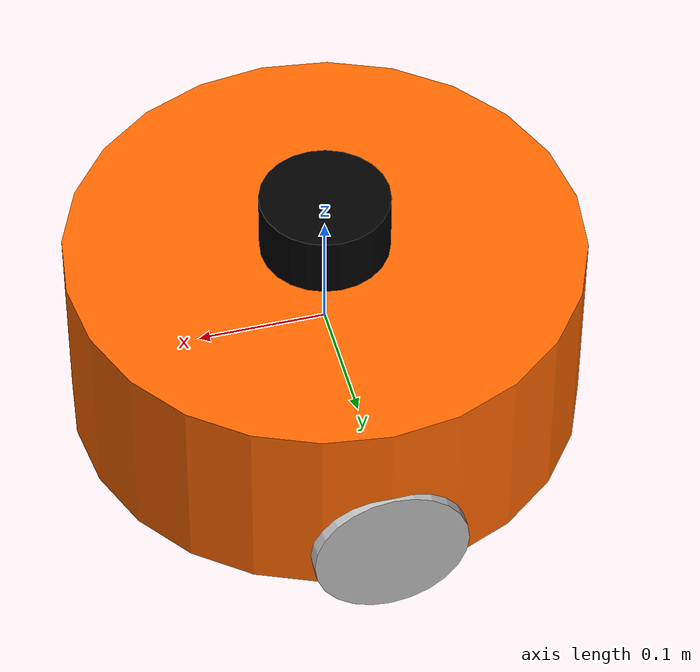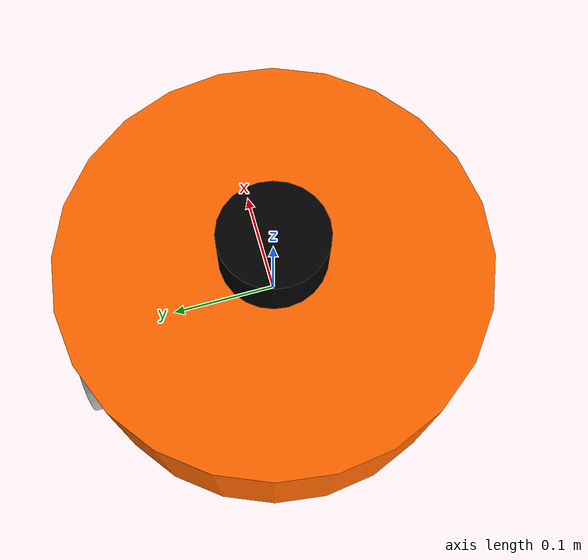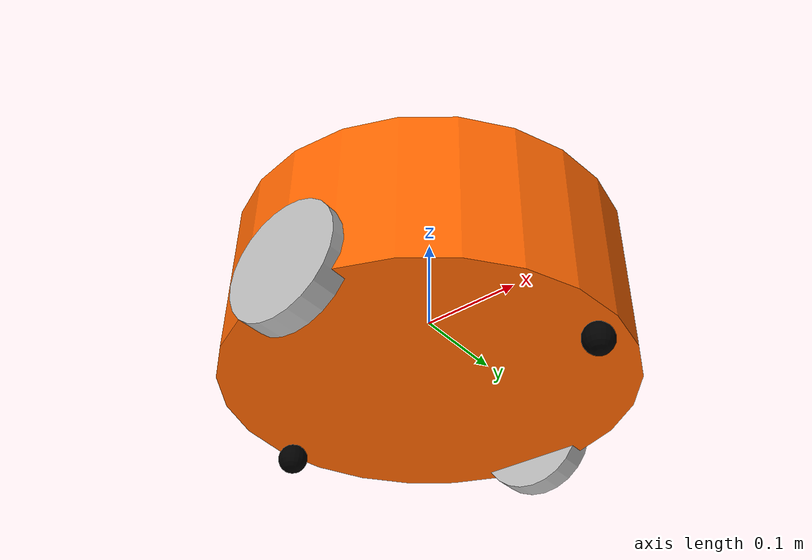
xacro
<?xml version="1.0"?>
<robot name="mbot" xmlns:xacro="http://www.ros.org/wiki/xacro">

    <xacro:include filename="$(find learning_gazebo_harmonic)/urdf/mbot_base_gazebo_harmonic.xacro" />
    <xacro:include filename="$(find learning_gazebo_harmonic)/urdf/sensors/lidar_gazebo_harmonic.xacro" />

    <xacro:property name="lidar_offset_x" value="0" />
    <xacro:property name="lidar_offset_y" value="0" />
    <xacro:property name="lidar_offset_z" value="0.105" />

    <!-- lidar -->
    <joint name="lidar_joint" type="fixed">
        <origin xyz="${lidar_offset_x} ${lidar_offset_y} ${lidar_offset_z}" rpy="0 0 0" />
        <parent link="base_link"/>
        <child link="laser_link"/>
    </joint>

    <xacro:laser_lidar prefix="laser"/>

    <xacro:mbot_base_gazebo/>

</robot>

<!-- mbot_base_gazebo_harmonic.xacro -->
<robot name="mbot" xmlns:xacro="http://www.ros.org/wiki/xacro">
    <!-- PROPERTY LIST -->
    <xacro:property name="M_PI" value="3.1415926"/>
    <xacro:property name="base_mass"   value="1" />
    <xacro:property name="base_radius" value="0.20"/>
    <xacro:property name="base_length" value="0.16"/>

    <xacro:property name="wheel_mass"   value="0.2" />
    <xacro:property name="wheel_radius" value="0.06"/>
    <xacro:property name="wheel_length" value="0.025"/>
    <xacro:property name="wheel_joint_y" value="0.19"/>
    <xacro:property name="wheel_joint_z" value="0.05"/>

    <xacro:property name="caster_mass"    value="0.2" />
    <xacro:property name="caster_radius"  value="0.015"/> <!-- wheel_radius - ( base_length/2 - wheel_joint_z) -->
    <xacro:property name="caster_joint_x" value="0.18"/>

    <!-- Defining the colors used in this robot -->
    <material name="yellow">
        <color rgba="1 0.4 0 1"/>
    </material>
    <material name="black">
        <color rgba="0 0 0 0.95"/>
    </material>
    <material name="gray">
        <color rgba="0.75 0.75 0.75 1"/>
    </material>

    <!-- Macro for inertia matrix -->
    <xacro:macro name="sphere_inertial_matrix" params="m r">
        <inertial>
            <origin xyz="0 0 0" rpy="0 0 0"/>
            <mass value="${m}" />
            <inertia ixx="${2*m*r*r/5}" ixy="0" ixz="0"
                iyy="${2*m*r*r/5}" iyz="0"
                izz="${2*m*r*r/5}" />
        </inertial>
    </xacro:macro>

    <xacro:macro name="cylinder_inertial_matrix" params="m r h">
        <inertial>
            <origin xyz="0 0 0" rpy="0 0 0"/>
            <mass value="${m}" />
            <inertia ixx="${m*(3*r*r+h*h)/12}" ixy = "0" ixz = "0"
                iyy="${m*(3*r*r+h*h)/12}" iyz = "0"
                izz="${m*r*r/2}" />
        </inertial>
    </xacro:macro>

    <!-- Macro for robot wheel -->
    <xacro:macro name="wheel" params="prefix reflect">
        <joint name="${prefix}_wheel_joint" type="continuous">
            <origin xyz="0 ${reflect*wheel_joint_y} ${-wheel_joint_z}" rpy="0 0 0"/>
            <parent link="base_link"/>
            <child link="${prefix}_wheel_link"/>
            <axis xyz="0 1 0"/>
        </joint>

        <link name="${prefix}_wheel_link">
            <collision>
                <origin xyz="0 0 0" rpy="${M_PI/2} 0 0" />
                <geometry>
                    <cylinder radius="${wheel_radius}" length = "${wheel_length}"/>
                </geometry>
            </collision>

            <visual>
                <origin xyz="0 0 0" rpy="${M_PI/2} 0 0" />
                <geometry>
                    <cylinder radius="${wheel_radius}" length = "${wheel_length}"/>
                </geometry>
                <material name="gray" />
            </visual>

            <xacro:cylinder_inertial_matrix  m="${wheel_mass}" r="${wheel_radius}" h="${wheel_length}" />
        </link>

        <gazebo reference="${prefix}_wheel_link">
            <mu1>100000.0</mu1>
            <mu2>100000.0</mu2>
        </gazebo>
    </xacro:macro>

    <!-- Macro for robot caster -->
    <xacro:macro name="caster" params="prefix reflect">
        <joint name="${prefix}_caster_joint" type="fixed">
            <origin xyz="${reflect*caster_joint_x} 0 ${-(base_length/2 + caster_radius)}" rpy="0 0 0"/>
            <parent link="base_link"/>
            <child link="${prefix}_caster_link"/>
        </joint>

        <link name="${prefix}_caster_link">
            <collision>
                <origin xyz="0 0 0" rpy="0 0 0"/>
                <geometry>
                    <sphere radius="${caster_radius}" />
                </geometry>
            </collision>

            <visual>
                <origin xyz="0 0 0" rpy="0 0 0"/>
                <geometry>
                    <sphere radius="${caster_radius}" />
                </geometry>
                <material name="black" />
            </visual>

            <xacro:sphere_inertial_matrix  m="${caster_mass}" r="${caster_radius}" />
        </link>
    </xacro:macro>

    <xacro:macro name="mbot_base_gazebo">
        <link name="base_footprint"/>

        <joint name="base_footprint_joint" type="fixed">
            <parent link="base_footprint"/>
            <child link="base_link" />
        </joint>

        <link name="base_link">
         	<collision>
                <origin xyz=" 0 0 0" rpy="0 0 0" />
                <geometry>
                    <cylinder length="${base_length}" radius="${base_radius}"/>
                </geometry>
            </collision>

            <visual>
                <origin xyz=" 0 0 0" rpy="0 0 0" />
                <geometry>
                    <cylinder length="${base_length}" radius="${base_radius}"/>
                </geometry>
                <material name="yellow" />
            </visual>

            <xacro:cylinder_inertial_matrix  m="${base_mass}" r="${base_radius}" h="${base_length}" />
        </link>

        <xacro:wheel prefix="left"  reflect="1"/>
        <xacro:wheel prefix="right" reflect="-1"/>

        <xacro:caster prefix="front" reflect="-1"/>
        <xacro:caster prefix="back"  reflect="1"/>

        <!-- controller -->
        <gazebo>
            <plugin filename="libignition-gazebo-diff-drive-system.so"
                    name="ignition::gazebo::systems::DiffDrive">
                  <update_rate>30</update_rate>
                  <left_joint>left_wheel_joint</left_joint>
                  <right_joint>right_wheel_joint</right_joint>
                  <wheel_separation>${wheel_joint_y*2}</wheel_separation>
                  <wheel_radius>${wheel_radius}</wheel_radius>
                  <topic>cmd_vel</topic>
                  <publish_odom>true</publish_odom>
                  <publish_odom_tf>true</publish_odom_tf>
                  <publish_wheel_tf>true</publish_wheel_tf>
                  <odometry_topic>odom</odometry_topic>
                  <odometry_frame>odom</odometry_frame>
                  <robot_base_frame>base_footprint</robot_base_frame>
            </plugin>
            <plugin
				filename="ignition-gazebo-sensors-system"
				name="ignition::gazebo::systems::Sensors">
				<render_engine>ogre2</render_engine>
			</plugin>
			<plugin
				filename="ignition-gazebo-user-commands-system"
				name="ignition::gazebo::systems::UserCommands">
			</plugin>
			<plugin
				filename="ignition-gazebo-scene-broadcaster-system"
				name="ignition::gazebo::systems::SceneBroadcaster">
			</plugin>
			<plugin
				filename="ignition-gazebo-joint-state-publisher-system"
				name="ignition::gazebo::systems::JointStatePublisher"/>
			<plugin
				filename="ignition-gazebo-odometry-publisher-system"
				name="ignition::gazebo::systems::OdometryPublisher">
				<odom_frame>odom</odom_frame>
				<robot_base_frame>base_footprint</robot_base_frame>
			</plugin>
        </gazebo>
    </xacro:macro>

</robot>

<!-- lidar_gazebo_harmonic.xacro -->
<robot xmlns:xacro="http://www.ros.org/wiki/xacro" name="laser">

    <xacro:macro name="laser_lidar" params="prefix:=laser">
        <!-- Create laser reference frame -->
        <link name="${prefix}_link">
            <inertial>
                <mass value="0.1" />
                <origin xyz="0 0 0" />
                <inertia ixx="0.01" ixy="0.0" ixz="0.0"
                         iyy="0.01" iyz="0.0"
                         izz="0.01" />
            </inertial>

            <visual>
                <origin xyz=" 0 0 0 " rpy="0 0 0" />
                <geometry>
                    <cylinder length="0.05" radius="0.05"/>
                </geometry>
                <material name="black"/>
            </visual>

            <collision>
                <origin xyz="0.0 0.0 0.0" rpy="0 0 0" />
                <geometry>
                    <cylinder length="0.06" radius="0.05"/>
                </geometry>
            </collision>
        </link>

        <gazebo reference="${prefix}_link">
            <sensor type="gpu_lidar" name="gpu_lidar">
				<topic>lidar</topic>
				<update_rate>20</update_rate>
				<ray>
					<scan>
						<horizontal>
							<samples>360</samples>
							<resolution>1</resolution>
							<min_angle>-3.14</min_angle>
							<max_angle>3.14</max_angle>
						</horizontal>
						<vertical>
							<samples>1</samples>
							<resolution>0.01</resolution>
							<min_angle>0</min_angle>
							<max_angle>0</max_angle>
						</vertical>
					</scan>
					<range>
						<min>0.08</min>
						<max>10.0</max>
						<resolution>0.01</resolution>
					</range>
				</ray>
				<alwaysOn>1</alwaysOn>
				<visualize>true</visualize>
				<ignition_frame_id>${prefix}_link</ignition_frame_id>
            </sensor>
        </gazebo>

    </xacro:macro>
</robot>
